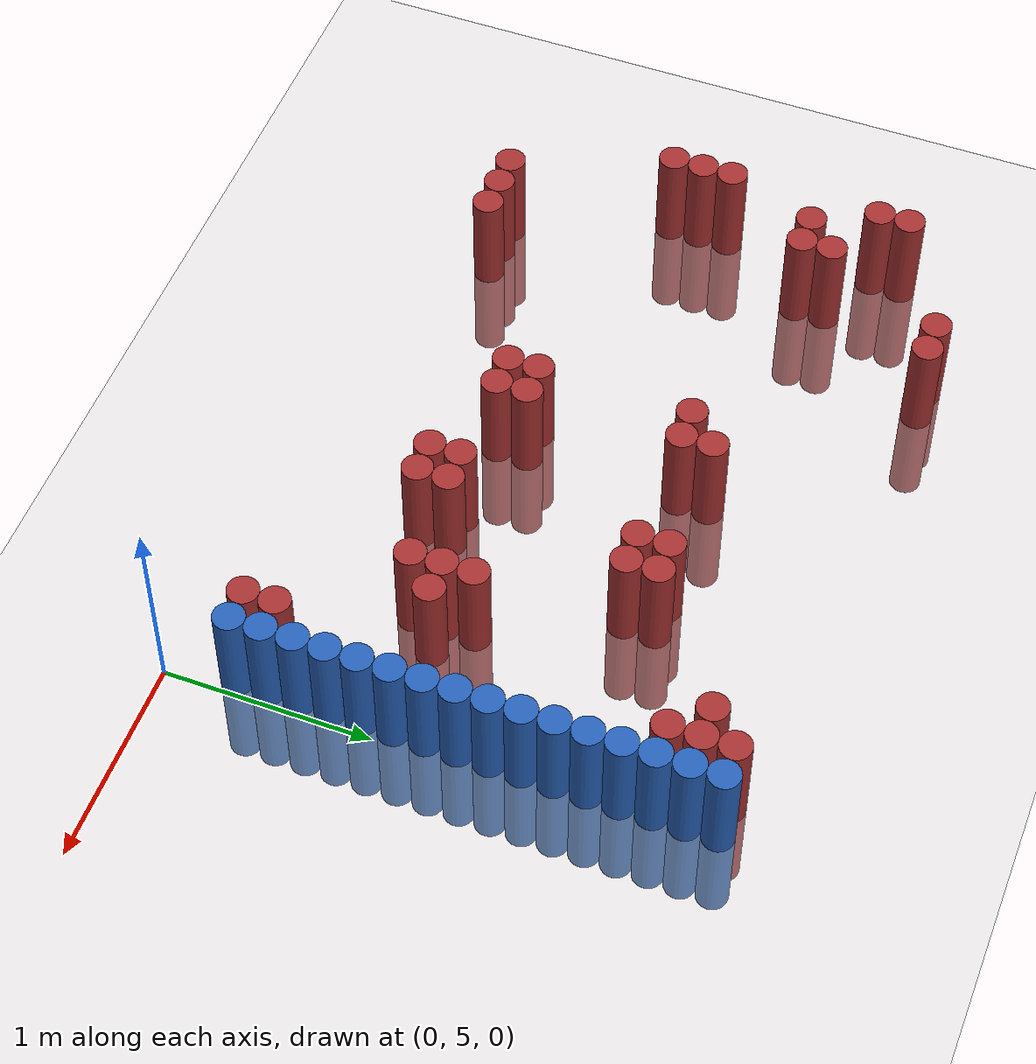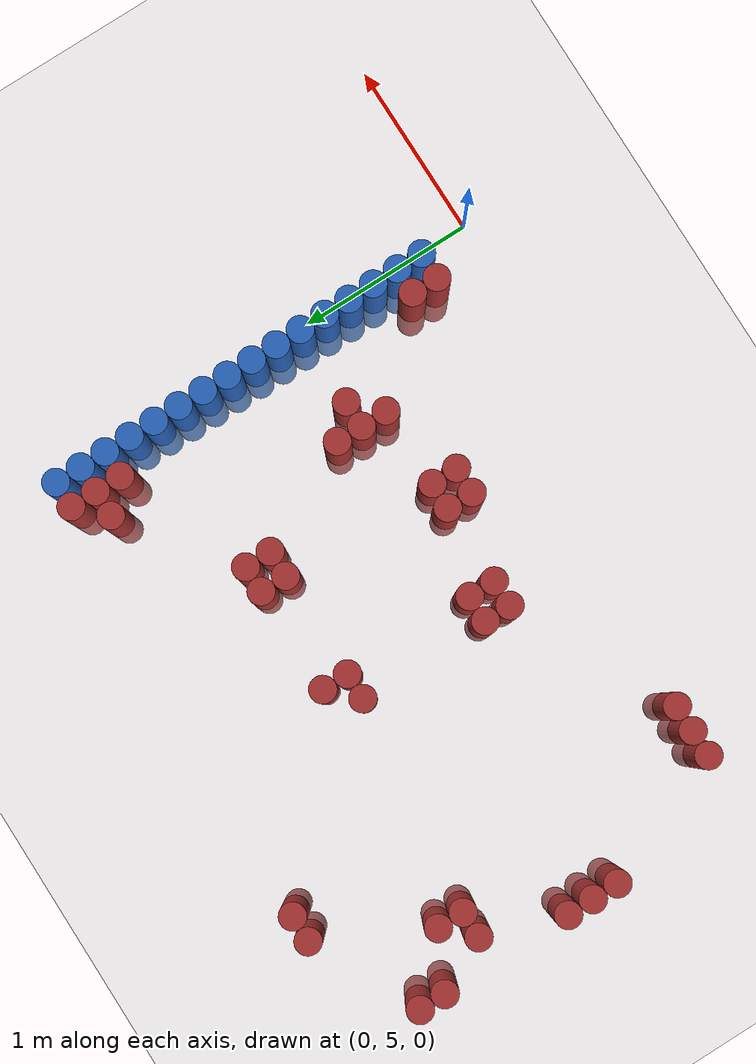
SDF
<sdf version="1.6">
 <world name="default">
  <model name="ground_plane">
   <static>1</static>
   <link name="link">
    <collision name="collision">
     <geometry><plane><normal>0 0 1</normal><size>100 100</size></plane></geometry>
     <surface><friction><ode><mu>100</mu><mu2>50</mu2></ode></friction></surface>
    </collision>
    <visual name="visual">
     <cast_shadows>0</cast_shadows>
     <geometry><plane><normal>0 0 1</normal><size>100 100</size></plane></geometry>
     <material>
      <script><uri>file://media/materials/scripts/gazebo.material</uri><name>Gazebo/Grey</name></script>
     </material>
    </visual>
   </link>
  </model>
  <model name="unit_cylinder_152">
   <static>1</static>
   <pose>-3.375000 6.225000 0.000000 0.000000 0.000000 0.000000</pose>
   <link name="link">
    <inertial>
     <mass>1</mass>
     <inertia><ixx>0.145833</ixx><ixy>0</ixy><ixz>0</ixz><iyy>0.145833</iyy><iyz>0</iyz><izz>0.125</izz></inertia>
    </inertial>
    <collision name="collision">
     <geometry><cylinder><radius>0.075000</radius><length>1</length></cylinder></geometry>
    </collision>
    <visual name="visual">
     <geometry><cylinder><radius>0.075000</radius><length>1</length></cylinder></geometry>
     <material>
      <ambient>0.648000 0.192000 0.192000 1</ambient>
      <diffuse>0.648000 0.192000 0.192000 1</diffuse>
     </material>
     <material>
      <script><name>Gazebo/Grey</name><uri>file://media/materials/scripts/gazebo.material</uri></script>
     </material>
    </visual>
   </link>
  </model>
  <model name="unit_cylinder_153">
   <static>1</static>
   <pose>-3.375000 6.375000 0.000000 0.000000 0.000000 0.000000</pose>
   <link name="link">
    <inertial>
     <mass>1</mass>
     <inertia><ixx>0.145833</ixx><ixy>0</ixy><ixz>0</ixz><iyy>0.145833</iyy><iyz>0</iyz><izz>0.125</izz></inertia>
    </inertial>
    <collision name="collision">
     <geometry><cylinder><radius>0.075000</radius><length>1</length></cylinder></geometry>
    </collision>
    <visual name="visual">
     <geometry><cylinder><radius>0.075000</radius><length>1</length></cylinder></geometry>
     <material>
      <ambient>0.648000 0.192000 0.192000 1</ambient>
      <diffuse>0.648000 0.192000 0.192000 1</diffuse>
     </material>
     <material>
      <script><name>Gazebo/Grey</name><uri>file://media/materials/scripts/gazebo.material</uri></script>
     </material>
    </visual>
   </link>
  </model>
  <model name="unit_cylinder_154">
   <static>1</static>
   <pose>-3.375000 6.525000 0.000000 0.000000 0.000000 0.000000</pose>
   <link name="link">
    <inertial>
     <mass>1</mass>
     <inertia><ixx>0.145833</ixx><ixy>0</ixy><ixz>0</ixz><iyy>0.145833</iyy><iyz>0</iyz><izz>0.125</izz></inertia>
    </inertial>
    <collision name="collision">
     <geometry><cylinder><radius>0.075000</radius><length>1</length></cylinder></geometry>
    </collision>
    <visual name="visual">
     <geometry><cylinder><radius>0.075000</radius><length>1</length></cylinder></geometry>
     <material>
      <ambient>0.648000 0.192000 0.192000 1</ambient>
      <diffuse>0.648000 0.192000 0.192000 1</diffuse>
     </material>
     <material>
      <script><name>Gazebo/Grey</name><uri>file://media/materials/scripts/gazebo.material</uri></script>
     </material>
    </visual>
   </link>
  </model>
  <model name="unit_cylinder_155">
   <static>1</static>
   <pose>-3.375000 7.275000 0.000000 0.000000 0.000000 0.000000</pose>
   <link name="link">
    <inertial>
     <mass>1</mass>
     <inertia><ixx>0.145833</ixx><ixy>0</ixy><ixz>0</ixz><iyy>0.145833</iyy><iyz>0</iyz><izz>0.125</izz></inertia>
    </inertial>
    <collision name="collision">
     <geometry><cylinder><radius>0.075000</radius><length>1</length></cylinder></geometry>
    </collision>
    <visual name="visual">
     <geometry><cylinder><radius>0.075000</radius><length>1</length></cylinder></geometry>
     <material>
      <ambient>0.648000 0.192000 0.192000 1</ambient>
      <diffuse>0.648000 0.192000 0.192000 1</diffuse>
     </material>
     <material>
      <script><name>Gazebo/Grey</name><uri>file://media/materials/scripts/gazebo.material</uri></script>
     </material>
    </visual>
   </link>
  </model>
  <model name="unit_cylinder_156">
   <static>1</static>
   <pose>-3.375000 7.425000 0.000000 0.000000 0.000000 0.000000</pose>
   <link name="link">
    <inertial>
     <mass>1</mass>
     <inertia><ixx>0.145833</ixx><ixy>0</ixy><ixz>0</ixz><iyy>0.145833</iyy><iyz>0</iyz><izz>0.125</izz></inertia>
    </inertial>
    <collision name="collision">
     <geometry><cylinder><radius>0.075000</radius><length>1</length></cylinder></geometry>
    </collision>
    <visual name="visual">
     <geometry><cylinder><radius>0.075000</radius><length>1</length></cylinder></geometry>
     <material>
      <ambient>0.648000 0.192000 0.192000 1</ambient>
      <diffuse>0.648000 0.192000 0.192000 1</diffuse>
     </material>
     <material>
      <script><name>Gazebo/Grey</name><uri>file://media/materials/scripts/gazebo.material</uri></script>
     </material>
    </visual>
   </link>
  </model>
  <model name="unit_cylinder_157">
   <static>1</static>
   <pose>-3.225000 6.975000 0.000000 0.000000 0.000000 0.000000</pose>
   <link name="link">
    <inertial>
     <mass>1</mass>
     <inertia><ixx>0.145833</ixx><ixy>0</ixy><ixz>0</ixz><iyy>0.145833</iyy><iyz>0</iyz><izz>0.125</izz></inertia>
    </inertial>
    <collision name="collision">
     <geometry><cylinder><radius>0.075000</radius><length>1</length></cylinder></geometry>
    </collision>
    <visual name="visual">
     <geometry><cylinder><radius>0.075000</radius><length>1</length></cylinder></geometry>
     <material>
      <ambient>0.648000 0.192000 0.192000 1</ambient>
      <diffuse>0.648000 0.192000 0.192000 1</diffuse>
     </material>
     <material>
      <script><name>Gazebo/Grey</name><uri>file://media/materials/scripts/gazebo.material</uri></script>
     </material>
    </visual>
   </link>
  </model>
  <model name="unit_cylinder_159">
   <static>1</static>
   <pose>-3.075000 5.475000 0.000000 0.000000 0.000000 0.000000</pose>
   <link name="link">
    <inertial>
     <mass>1</mass>
     <inertia><ixx>0.145833</ixx><ixy>0</ixy><ixz>0</ixz><iyy>0.145833</iyy><iyz>0</iyz><izz>0.125</izz></inertia>
    </inertial>
    <collision name="collision">
     <geometry><cylinder><radius>0.075000</radius><length>1</length></cylinder></geometry>
    </collision>
    <visual name="visual">
     <geometry><cylinder><radius>0.075000</radius><length>1</length></cylinder></geometry>
     <material>
      <ambient>0.648000 0.192000 0.192000 1</ambient>
      <diffuse>0.648000 0.192000 0.192000 1</diffuse>
     </material>
     <material>
      <script><name>Gazebo/Grey</name><uri>file://media/materials/scripts/gazebo.material</uri></script>
     </material>
    </visual>
   </link>
  </model>
  <model name="unit_cylinder_160">
   <static>1</static>
   <pose>-3.075000 6.975000 0.000000 0.000000 0.000000 0.000000</pose>
   <link name="link">
    <inertial>
     <mass>1</mass>
     <inertia><ixx>0.145833</ixx><ixy>0</ixy><ixz>0</ixz><iyy>0.145833</iyy><iyz>0</iyz><izz>0.125</izz></inertia>
    </inertial>
    <collision name="collision">
     <geometry><cylinder><radius>0.075000</radius><length>1</length></cylinder></geometry>
    </collision>
    <visual name="visual">
     <geometry><cylinder><radius>0.075000</radius><length>1</length></cylinder></geometry>
     <material>
      <ambient>0.648000 0.192000 0.192000 1</ambient>
      <diffuse>0.648000 0.192000 0.192000 1</diffuse>
     </material>
     <material>
      <script><name>Gazebo/Grey</name><uri>file://media/materials/scripts/gazebo.material</uri></script>
     </material>
    </visual>
   </link>
  </model>
  <model name="unit_cylinder_161">
   <static>1</static>
   <pose>-3.075000 7.125000 0.000000 0.000000 0.000000 0.000000</pose>
   <link name="link">
    <inertial>
     <mass>1</mass>
     <inertia><ixx>0.145833</ixx><ixy>0</ixy><ixz>0</ixz><iyy>0.145833</iyy><iyz>0</iyz><izz>0.125</izz></inertia>
    </inertial>
    <collision name="collision">
     <geometry><cylinder><radius>0.075000</radius><length>1</length></cylinder></geometry>
    </collision>
    <visual name="visual">
     <geometry><cylinder><radius>0.075000</radius><length>1</length></cylinder></geometry>
     <material>
      <ambient>0.648000 0.192000 0.192000 1</ambient>
      <diffuse>0.648000 0.192000 0.192000 1</diffuse>
     </material>
     <material>
      <script><name>Gazebo/Grey</name><uri>file://media/materials/scripts/gazebo.material</uri></script>
     </material>
    </visual>
   </link>
  </model>
  <model name="unit_cylinder_164">
   <static>1</static>
   <pose>-2.925000 5.475000 0.000000 0.000000 0.000000 0.000000</pose>
   <link name="link">
    <inertial>
     <mass>1</mass>
     <inertia><ixx>0.145833</ixx><ixy>0</ixy><ixz>0</ixz><iyy>0.145833</iyy><iyz>0</iyz><izz>0.125</izz></inertia>
    </inertial>
    <collision name="collision">
     <geometry><cylinder><radius>0.075000</radius><length>1</length></cylinder></geometry>
    </collision>
    <visual name="visual">
     <geometry><cylinder><radius>0.075000</radius><length>1</length></cylinder></geometry>
     <material>
      <ambient>0.648000 0.192000 0.192000 1</ambient>
      <diffuse>0.648000 0.192000 0.192000 1</diffuse>
     </material>
     <material>
      <script><name>Gazebo/Grey</name><uri>file://media/materials/scripts/gazebo.material</uri></script>
     </material>
    </visual>
   </link>
  </model>
  <model name="unit_cylinder_169">
   <static>1</static>
   <pose>-2.775000 5.475000 0.000000 0.000000 0.000000 0.000000</pose>
   <link name="link">
    <inertial>
     <mass>1</mass>
     <inertia><ixx>0.145833</ixx><ixy>0</ixy><ixz>0</ixz><iyy>0.145833</iyy><iyz>0</iyz><izz>0.125</izz></inertia>
    </inertial>
    <collision name="collision">
     <geometry><cylinder><radius>0.075000</radius><length>1</length></cylinder></geometry>
    </collision>
    <visual name="visual">
     <geometry><cylinder><radius>0.075000</radius><length>1</length></cylinder></geometry>
     <material>
      <ambient>0.648000 0.192000 0.192000 1</ambient>
      <diffuse>0.648000 0.192000 0.192000 1</diffuse>
     </material>
     <material>
      <script><name>Gazebo/Grey</name><uri>file://media/materials/scripts/gazebo.material</uri></script>
     </material>
    </visual>
   </link>
  </model>
  <model name="unit_cylinder_170">
   <static>1</static>
   <pose>-2.775000 7.725000 0.000000 0.000000 0.000000 0.000000</pose>
   <link name="link">
    <inertial>
     <mass>1</mass>
     <inertia><ixx>0.145833</ixx><ixy>0</ixy><ixz>0</ixz><iyy>0.145833</iyy><iyz>0</iyz><izz>0.125</izz></inertia>
    </inertial>
    <collision name="collision">
     <geometry><cylinder><radius>0.075000</radius><length>1</length></cylinder></geometry>
    </collision>
    <visual name="visual">
     <geometry><cylinder><radius>0.075000</radius><length>1</length></cylinder></geometry>
     <material>
      <ambient>0.648000 0.192000 0.192000 1</ambient>
      <diffuse>0.648000 0.192000 0.192000 1</diffuse>
     </material>
     <material>
      <script><name>Gazebo/Grey</name><uri>file://media/materials/scripts/gazebo.material</uri></script>
     </material>
    </visual>
   </link>
  </model>
  <model name="unit_cylinder_176">
   <static>1</static>
   <pose>-2.625000 7.725000 0.000000 0.000000 0.000000 0.000000</pose>
   <link name="link">
    <inertial>
     <mass>1</mass>
     <inertia><ixx>0.145833</ixx><ixy>0</ixy><ixz>0</ixz><iyy>0.145833</iyy><iyz>0</iyz><izz>0.125</izz></inertia>
    </inertial>
    <collision name="collision">
     <geometry><cylinder><radius>0.075000</radius><length>1</length></cylinder></geometry>
    </collision>
    <visual name="visual">
     <geometry><cylinder><radius>0.075000</radius><length>1</length></cylinder></geometry>
     <material>
      <ambient>0.648000 0.192000 0.192000 1</ambient>
      <diffuse>0.648000 0.192000 0.192000 1</diffuse>
     </material>
     <material>
      <script><name>Gazebo/Grey</name><uri>file://media/materials/scripts/gazebo.material</uri></script>
     </material>
    </visual>
   </link>
  </model>
  <model name="unit_cylinder_196">
   <static>1</static>
   <pose>-1.875000 5.925000 0.000000 0.000000 0.000000 0.000000</pose>
   <link name="link">
    <inertial>
     <mass>1</mass>
     <inertia><ixx>0.145833</ixx><ixy>0</ixy><ixz>0</ixz><iyy>0.145833</iyy><iyz>0</iyz><izz>0.125</izz></inertia>
    </inertial>
    <collision name="collision">
     <geometry><cylinder><radius>0.075000</radius><length>1</length></cylinder></geometry>
    </collision>
    <visual name="visual">
     <geometry><cylinder><radius>0.075000</radius><length>1</length></cylinder></geometry>
     <material>
      <ambient>0.648000 0.192000 0.192000 1</ambient>
      <diffuse>0.648000 0.192000 0.192000 1</diffuse>
     </material>
     <material>
      <script><name>Gazebo/Grey</name><uri>file://media/materials/scripts/gazebo.material</uri></script>
     </material>
    </visual>
   </link>
  </model>
  <model name="unit_cylinder_197">
   <static>1</static>
   <pose>-1.875000 6.075000 0.000000 0.000000 0.000000 0.000000</pose>
   <link name="link">
    <inertial>
     <mass>1</mass>
     <inertia><ixx>0.145833</ixx><ixy>0</ixy><ixz>0</ixz><iyy>0.145833</iyy><iyz>0</iyz><izz>0.125</izz></inertia>
    </inertial>
    <collision name="collision">
     <geometry><cylinder><radius>0.075000</radius><length>1</length></cylinder></geometry>
    </collision>
    <visual name="visual">
     <geometry><cylinder><radius>0.075000</radius><length>1</length></cylinder></geometry>
     <material>
      <ambient>0.648000 0.192000 0.192000 1</ambient>
      <diffuse>0.648000 0.192000 0.192000 1</diffuse>
     </material>
     <material>
      <script><name>Gazebo/Grey</name><uri>file://media/materials/scripts/gazebo.material</uri></script>
     </material>
    </visual>
   </link>
  </model>
  <model name="unit_cylinder_198">
   <static>1</static>
   <pose>-1.875000 6.825000 0.000000 0.000000 0.000000 0.000000</pose>
   <link name="link">
    <inertial>
     <mass>1</mass>
     <inertia><ixx>0.145833</ixx><ixy>0</ixy><ixz>0</ixz><iyy>0.145833</iyy><iyz>0</iyz><izz>0.125</izz></inertia>
    </inertial>
    <collision name="collision">
     <geometry><cylinder><radius>0.075000</radius><length>1</length></cylinder></geometry>
    </collision>
    <visual name="visual">
     <geometry><cylinder><radius>0.075000</radius><length>1</length></cylinder></geometry>
     <material>
      <ambient>0.648000 0.192000 0.192000 1</ambient>
      <diffuse>0.648000 0.192000 0.192000 1</diffuse>
     </material>
     <material>
      <script><name>Gazebo/Grey</name><uri>file://media/materials/scripts/gazebo.material</uri></script>
     </material>
    </visual>
   </link>
  </model>
  <model name="unit_cylinder_201">
   <static>1</static>
   <pose>-1.725000 5.925000 0.000000 0.000000 0.000000 0.000000</pose>
   <link name="link">
    <inertial>
     <mass>1</mass>
     <inertia><ixx>0.145833</ixx><ixy>0</ixy><ixz>0</ixz><iyy>0.145833</iyy><iyz>0</iyz><izz>0.125</izz></inertia>
    </inertial>
    <collision name="collision">
     <geometry><cylinder><radius>0.075000</radius><length>1</length></cylinder></geometry>
    </collision>
    <visual name="visual">
     <geometry><cylinder><radius>0.075000</radius><length>1</length></cylinder></geometry>
     <material>
      <ambient>0.648000 0.192000 0.192000 1</ambient>
      <diffuse>0.648000 0.192000 0.192000 1</diffuse>
     </material>
     <material>
      <script><name>Gazebo/Grey</name><uri>file://media/materials/scripts/gazebo.material</uri></script>
     </material>
    </visual>
   </link>
  </model>
  <model name="unit_cylinder_202">
   <static>1</static>
   <pose>-1.725000 6.075000 0.000000 0.000000 0.000000 0.000000</pose>
   <link name="link">
    <inertial>
     <mass>1</mass>
     <inertia><ixx>0.145833</ixx><ixy>0</ixy><ixz>0</ixz><iyy>0.145833</iyy><iyz>0</iyz><izz>0.125</izz></inertia>
    </inertial>
    <collision name="collision">
     <geometry><cylinder><radius>0.075000</radius><length>1</length></cylinder></geometry>
    </collision>
    <visual name="visual">
     <geometry><cylinder><radius>0.075000</radius><length>1</length></cylinder></geometry>
     <material>
      <ambient>0.648000 0.192000 0.192000 1</ambient>
      <diffuse>0.648000 0.192000 0.192000 1</diffuse>
     </material>
     <material>
      <script><name>Gazebo/Grey</name><uri>file://media/materials/scripts/gazebo.material</uri></script>
     </material>
    </visual>
   </link>
  </model>
  <model name="unit_cylinder_203">
   <static>1</static>
   <pose>-1.725000 6.825000 0.000000 0.000000 0.000000 0.000000</pose>
   <link name="link">
    <inertial>
     <mass>1</mass>
     <inertia><ixx>0.145833</ixx><ixy>0</ixy><ixz>0</ixz><iyy>0.145833</iyy><iyz>0</iyz><izz>0.125</izz></inertia>
    </inertial>
    <collision name="collision">
     <geometry><cylinder><radius>0.075000</radius><length>1</length></cylinder></geometry>
    </collision>
    <visual name="visual">
     <geometry><cylinder><radius>0.075000</radius><length>1</length></cylinder></geometry>
     <material>
      <ambient>0.648000 0.192000 0.192000 1</ambient>
      <diffuse>0.648000 0.192000 0.192000 1</diffuse>
     </material>
     <material>
      <script><name>Gazebo/Grey</name><uri>file://media/materials/scripts/gazebo.material</uri></script>
     </material>
    </visual>
   </link>
  </model>
  <model name="unit_cylinder_204">
   <static>1</static>
   <pose>-1.725000 6.975000 0.000000 0.000000 0.000000 0.000000</pose>
   <link name="link">
    <inertial>
     <mass>1</mass>
     <inertia><ixx>0.145833</ixx><ixy>0</ixy><ixz>0</ixz><iyy>0.145833</iyy><iyz>0</iyz><izz>0.125</izz></inertia>
    </inertial>
    <collision name="collision">
     <geometry><cylinder><radius>0.075000</radius><length>1</length></cylinder></geometry>
    </collision>
    <visual name="visual">
     <geometry><cylinder><radius>0.075000</radius><length>1</length></cylinder></geometry>
     <material>
      <ambient>0.648000 0.192000 0.192000 1</ambient>
      <diffuse>0.648000 0.192000 0.192000 1</diffuse>
     </material>
     <material>
      <script><name>Gazebo/Grey</name><uri>file://media/materials/scripts/gazebo.material</uri></script>
     </material>
    </visual>
   </link>
  </model>
  <model name="unit_cylinder_209">
   <static>1</static>
   <pose>-1.275000 5.775000 0.000000 0.000000 0.000000 0.000000</pose>
   <link name="link">
    <inertial>
     <mass>1</mass>
     <inertia><ixx>0.145833</ixx><ixy>0</ixy><ixz>0</ixz><iyy>0.145833</iyy><iyz>0</iyz><izz>0.125</izz></inertia>
    </inertial>
    <collision name="collision">
     <geometry><cylinder><radius>0.075000</radius><length>1</length></cylinder></geometry>
    </collision>
    <visual name="visual">
     <geometry><cylinder><radius>0.075000</radius><length>1</length></cylinder></geometry>
     <material>
      <ambient>0.648000 0.192000 0.192000 1</ambient>
      <diffuse>0.648000 0.192000 0.192000 1</diffuse>
     </material>
     <material>
      <script><name>Gazebo/Grey</name><uri>file://media/materials/scripts/gazebo.material</uri></script>
     </material>
    </visual>
   </link>
  </model>
  <model name="unit_cylinder_210">
   <static>1</static>
   <pose>-1.275000 5.925000 0.000000 0.000000 0.000000 0.000000</pose>
   <link name="link">
    <inertial>
     <mass>1</mass>
     <inertia><ixx>0.145833</ixx><ixy>0</ixy><ixz>0</ixz><iyy>0.145833</iyy><iyz>0</iyz><izz>0.125</izz></inertia>
    </inertial>
    <collision name="collision">
     <geometry><cylinder><radius>0.075000</radius><length>1</length></cylinder></geometry>
    </collision>
    <visual name="visual">
     <geometry><cylinder><radius>0.075000</radius><length>1</length></cylinder></geometry>
     <material>
      <ambient>0.648000 0.192000 0.192000 1</ambient>
      <diffuse>0.648000 0.192000 0.192000 1</diffuse>
     </material>
     <material>
      <script><name>Gazebo/Grey</name><uri>file://media/materials/scripts/gazebo.material</uri></script>
     </material>
    </visual>
   </link>
  </model>
  <model name="unit_cylinder_212">
   <static>1</static>
   <pose>-1.125000 5.775000 0.000000 0.000000 0.000000 0.000000</pose>
   <link name="link">
    <inertial>
     <mass>1</mass>
     <inertia><ixx>0.145833</ixx><ixy>0</ixy><ixz>0</ixz><iyy>0.145833</iyy><iyz>0</iyz><izz>0.125</izz></inertia>
    </inertial>
    <collision name="collision">
     <geometry><cylinder><radius>0.075000</radius><length>1</length></cylinder></geometry>
    </collision>
    <visual name="visual">
     <geometry><cylinder><radius>0.075000</radius><length>1</length></cylinder></geometry>
     <material>
      <ambient>0.648000 0.192000 0.192000 1</ambient>
      <diffuse>0.648000 0.192000 0.192000 1</diffuse>
     </material>
     <material>
      <script><name>Gazebo/Grey</name><uri>file://media/materials/scripts/gazebo.material</uri></script>
     </material>
    </visual>
   </link>
  </model>
  <model name="unit_cylinder_213">
   <static>1</static>
   <pose>-1.125000 5.925000 0.000000 0.000000 0.000000 0.000000</pose>
   <link name="link">
    <inertial>
     <mass>1</mass>
     <inertia><ixx>0.145833</ixx><ixy>0</ixy><ixz>0</ixz><iyy>0.145833</iyy><iyz>0</iyz><izz>0.125</izz></inertia>
    </inertial>
    <collision name="collision">
     <geometry><cylinder><radius>0.075000</radius><length>1</length></cylinder></geometry>
    </collision>
    <visual name="visual">
     <geometry><cylinder><radius>0.075000</radius><length>1</length></cylinder></geometry>
     <material>
      <ambient>0.648000 0.192000 0.192000 1</ambient>
      <diffuse>0.648000 0.192000 0.192000 1</diffuse>
     </material>
     <material>
      <script><name>Gazebo/Grey</name><uri>file://media/materials/scripts/gazebo.material</uri></script>
     </material>
    </visual>
   </link>
  </model>
  <model name="unit_cylinder_214">
   <static>1</static>
   <pose>-1.125000 6.825000 0.000000 0.000000 0.000000 0.000000</pose>
   <link name="link">
    <inertial>
     <mass>1</mass>
     <inertia><ixx>0.145833</ixx><ixy>0</ixy><ixz>0</ixz><iyy>0.145833</iyy><iyz>0</iyz><izz>0.125</izz></inertia>
    </inertial>
    <collision name="collision">
     <geometry><cylinder><radius>0.075000</radius><length>1</length></cylinder></geometry>
    </collision>
    <visual name="visual">
     <geometry><cylinder><radius>0.075000</radius><length>1</length></cylinder></geometry>
     <material>
      <ambient>0.648000 0.192000 0.192000 1</ambient>
      <diffuse>0.648000 0.192000 0.192000 1</diffuse>
     </material>
     <material>
      <script><name>Gazebo/Grey</name><uri>file://media/materials/scripts/gazebo.material</uri></script>
     </material>
    </visual>
   </link>
  </model>
  <model name="unit_cylinder_215">
   <static>1</static>
   <pose>-1.125000 6.975000 0.000000 0.000000 0.000000 0.000000</pose>
   <link name="link">
    <inertial>
     <mass>1</mass>
     <inertia><ixx>0.145833</ixx><ixy>0</ixy><ixz>0</ixz><iyy>0.145833</iyy><iyz>0</iyz><izz>0.125</izz></inertia>
    </inertial>
    <collision name="collision">
     <geometry><cylinder><radius>0.075000</radius><length>1</length></cylinder></geometry>
    </collision>
    <visual name="visual">
     <geometry><cylinder><radius>0.075000</radius><length>1</length></cylinder></geometry>
     <material>
      <ambient>0.648000 0.192000 0.192000 1</ambient>
      <diffuse>0.648000 0.192000 0.192000 1</diffuse>
     </material>
     <material>
      <script><name>Gazebo/Grey</name><uri>file://media/materials/scripts/gazebo.material</uri></script>
     </material>
    </visual>
   </link>
  </model>
  <model name="unit_cylinder_216">
   <static>1</static>
   <pose>-0.975000 6.825000 0.000000 0.000000 0.000000 0.000000</pose>
   <link name="link">
    <inertial>
     <mass>1</mass>
     <inertia><ixx>0.145833</ixx><ixy>0</ixy><ixz>0</ixz><iyy>0.145833</iyy><iyz>0</iyz><izz>0.125</izz></inertia>
    </inertial>
    <collision name="collision">
     <geometry><cylinder><radius>0.075000</radius><length>1</length></cylinder></geometry>
    </collision>
    <visual name="visual">
     <geometry><cylinder><radius>0.075000</radius><length>1</length></cylinder></geometry>
     <material>
      <ambient>0.648000 0.192000 0.192000 1</ambient>
      <diffuse>0.648000 0.192000 0.192000 1</diffuse>
     </material>
     <material>
      <script><name>Gazebo/Grey</name><uri>file://media/materials/scripts/gazebo.material</uri></script>
     </material>
    </visual>
   </link>
  </model>
  <model name="unit_cylinder_217">
   <static>1</static>
   <pose>-0.975000 6.975000 0.000000 0.000000 0.000000 0.000000</pose>
   <link name="link">
    <inertial>
     <mass>1</mass>
     <inertia><ixx>0.145833</ixx><ixy>0</ixy><ixz>0</ixz><iyy>0.145833</iyy><iyz>0</iyz><izz>0.125</izz></inertia>
    </inertial>
    <collision name="collision">
     <geometry><cylinder><radius>0.075000</radius><length>1</length></cylinder></geometry>
    </collision>
    <visual name="visual">
     <geometry><cylinder><radius>0.075000</radius><length>1</length></cylinder></geometry>
     <material>
      <ambient>0.648000 0.192000 0.192000 1</ambient>
      <diffuse>0.648000 0.192000 0.192000 1</diffuse>
     </material>
     <material>
      <script><name>Gazebo/Grey</name><uri>file://media/materials/scripts/gazebo.material</uri></script>
     </material>
    </visual>
   </link>
  </model>
  <model name="unit_cylinder_218">
   <static>1</static>
   <pose>-0.675000 5.925000 0.000000 0.000000 0.000000 0.000000</pose>
   <link name="link">
    <inertial>
     <mass>1</mass>
     <inertia><ixx>0.145833</ixx><ixy>0</ixy><ixz>0</ixz><iyy>0.145833</iyy><iyz>0</iyz><izz>0.125</izz></inertia>
    </inertial>
    <collision name="collision">
     <geometry><cylinder><radius>0.075000</radius><length>1</length></cylinder></geometry>
    </collision>
    <visual name="visual">
     <geometry><cylinder><radius>0.075000</radius><length>1</length></cylinder></geometry>
     <material>
      <ambient>0.648000 0.192000 0.192000 1</ambient>
      <diffuse>0.648000 0.192000 0.192000 1</diffuse>
     </material>
     <material>
      <script><name>Gazebo/Grey</name><uri>file://media/materials/scripts/gazebo.material</uri></script>
     </material>
    </visual>
   </link>
  </model>
  <model name="unit_cylinder_219">
   <static>1</static>
   <pose>-0.675000 6.075000 0.000000 0.000000 0.000000 0.000000</pose>
   <link name="link">
    <inertial>
     <mass>1</mass>
     <inertia><ixx>0.145833</ixx><ixy>0</ixy><ixz>0</ixz><iyy>0.145833</iyy><iyz>0</iyz><izz>0.125</izz></inertia>
    </inertial>
    <collision name="collision">
     <geometry><cylinder><radius>0.075000</radius><length>1</length></cylinder></geometry>
    </collision>
    <visual name="visual">
     <geometry><cylinder><radius>0.075000</radius><length>1</length></cylinder></geometry>
     <material>
      <ambient>0.648000 0.192000 0.192000 1</ambient>
      <diffuse>0.648000 0.192000 0.192000 1</diffuse>
     </material>
     <material>
      <script><name>Gazebo/Grey</name><uri>file://media/materials/scripts/gazebo.material</uri></script>
     </material>
    </visual>
   </link>
  </model>
  <model name="unit_cylinder_220">
   <static>1</static>
   <pose>-0.675000 6.225000 0.000000 0.000000 0.000000 0.000000</pose>
   <link name="link">
    <inertial>
     <mass>1</mass>
     <inertia><ixx>0.145833</ixx><ixy>0</ixy><ixz>0</ixz><iyy>0.145833</iyy><iyz>0</iyz><izz>0.125</izz></inertia>
    </inertial>
    <collision name="collision">
     <geometry><cylinder><radius>0.075000</radius><length>1</length></cylinder></geometry>
    </collision>
    <visual name="visual">
     <geometry><cylinder><radius>0.075000</radius><length>1</length></cylinder></geometry>
     <material>
      <ambient>0.648000 0.192000 0.192000 1</ambient>
      <diffuse>0.648000 0.192000 0.192000 1</diffuse>
     </material>
     <material>
      <script><name>Gazebo/Grey</name><uri>file://media/materials/scripts/gazebo.material</uri></script>
     </material>
    </visual>
   </link>
  </model>
  <model name="unit_cylinder_221">
   <static>1</static>
   <pose>-0.525000 6.075000 0.000000 0.000000 0.000000 0.000000</pose>
   <link name="link">
    <inertial>
     <mass>1</mass>
     <inertia><ixx>0.145833</ixx><ixy>0</ixy><ixz>0</ixz><iyy>0.145833</iyy><iyz>0</iyz><izz>0.125</izz></inertia>
    </inertial>
    <collision name="collision">
     <geometry><cylinder><radius>0.075000</radius><length>1</length></cylinder></geometry>
    </collision>
    <visual name="visual">
     <geometry><cylinder><radius>0.075000</radius><length>1</length></cylinder></geometry>
     <material>
      <ambient>0.648000 0.192000 0.192000 1</ambient>
      <diffuse>0.648000 0.192000 0.192000 1</diffuse>
     </material>
     <material>
      <script><name>Gazebo/Grey</name><uri>file://media/materials/scripts/gazebo.material</uri></script>
     </material>
    </visual>
   </link>
  </model>
  <model name="unit_cylinder_223">
   <static>1</static>
   <pose>-0.375000 7.425000 0.000000 0.000000 0.000000 0.000000</pose>
   <link name="link">
    <inertial>
     <mass>1</mass>
     <inertia><ixx>0.145833</ixx><ixy>0</ixy><ixz>0</ixz><iyy>0.145833</iyy><iyz>0</iyz><izz>0.125</izz></inertia>
    </inertial>
    <collision name="collision">
     <geometry><cylinder><radius>0.075000</radius><length>1</length></cylinder></geometry>
    </collision>
    <visual name="visual">
     <geometry><cylinder><radius>0.075000</radius><length>1</length></cylinder></geometry>
     <material>
      <ambient>0.648000 0.192000 0.192000 1</ambient>
      <diffuse>0.648000 0.192000 0.192000 1</diffuse>
     </material>
     <material>
      <script><name>Gazebo/Grey</name><uri>file://media/materials/scripts/gazebo.material</uri></script>
     </material>
    </visual>
   </link>
  </model>
  <model name="unit_cylinder_227">
   <static>1</static>
   <pose>-0.225000 5.325000 0.000000 0.000000 0.000000 0.000000</pose>
   <link name="link">
    <inertial>
     <mass>1</mass>
     <inertia><ixx>0.145833</ixx><ixy>0</ixy><ixz>0</ixz><iyy>0.145833</iyy><iyz>0</iyz><izz>0.125</izz></inertia>
    </inertial>
    <collision name="collision">
     <geometry><cylinder><radius>0.075000</radius><length>1</length></cylinder></geometry>
    </collision>
    <visual name="visual">
     <geometry><cylinder><radius>0.075000</radius><length>1</length></cylinder></geometry>
     <material>
      <ambient>0.648000 0.192000 0.192000 1</ambient>
      <diffuse>0.648000 0.192000 0.192000 1</diffuse>
     </material>
     <material>
      <script><name>Gazebo/Grey</name><uri>file://media/materials/scripts/gazebo.material</uri></script>
     </material>
    </visual>
   </link>
  </model>
  <model name="unit_cylinder_228">
   <static>1</static>
   <pose>-0.225000 5.475000 0.000000 0.000000 0.000000 0.000000</pose>
   <link name="link">
    <inertial>
     <mass>1</mass>
     <inertia><ixx>0.145833</ixx><ixy>0</ixy><ixz>0</ixz><iyy>0.145833</iyy><iyz>0</iyz><izz>0.125</izz></inertia>
    </inertial>
    <collision name="collision">
     <geometry><cylinder><radius>0.075000</radius><length>1</length></cylinder></geometry>
    </collision>
    <visual name="visual">
     <geometry><cylinder><radius>0.075000</radius><length>1</length></cylinder></geometry>
     <material>
      <ambient>0.648000 0.192000 0.192000 1</ambient>
      <diffuse>0.648000 0.192000 0.192000 1</diffuse>
     </material>
     <material>
      <script><name>Gazebo/Grey</name><uri>file://media/materials/scripts/gazebo.material</uri></script>
     </material>
    </visual>
   </link>
  </model>
  <model name="unit_cylinder_229">
   <static>1</static>
   <pose>-0.225000 7.275000 0.000000 0.000000 0.000000 0.000000</pose>
   <link name="link">
    <inertial>
     <mass>1</mass>
     <inertia><ixx>0.145833</ixx><ixy>0</ixy><ixz>0</ixz><iyy>0.145833</iyy><iyz>0</iyz><izz>0.125</izz></inertia>
    </inertial>
    <collision name="collision">
     <geometry><cylinder><radius>0.075000</radius><length>1</length></cylinder></geometry>
    </collision>
    <visual name="visual">
     <geometry><cylinder><radius>0.075000</radius><length>1</length></cylinder></geometry>
     <material>
      <ambient>0.648000 0.192000 0.192000 1</ambient>
      <diffuse>0.648000 0.192000 0.192000 1</diffuse>
     </material>
     <material>
      <script><name>Gazebo/Grey</name><uri>file://media/materials/scripts/gazebo.material</uri></script>
     </material>
    </visual>
   </link>
  </model>
  <model name="unit_cylinder_230">
   <static>1</static>
   <pose>-0.225000 7.425000 0.000000 0.000000 0.000000 0.000000</pose>
   <link name="link">
    <inertial>
     <mass>1</mass>
     <inertia><ixx>0.145833</ixx><ixy>0</ixy><ixz>0</ixz><iyy>0.145833</iyy><iyz>0</iyz><izz>0.125</izz></inertia>
    </inertial>
    <collision name="collision">
     <geometry><cylinder><radius>0.075000</radius><length>1</length></cylinder></geometry>
    </collision>
    <visual name="visual">
     <geometry><cylinder><radius>0.075000</radius><length>1</length></cylinder></geometry>
     <material>
      <ambient>0.648000 0.192000 0.192000 1</ambient>
      <diffuse>0.648000 0.192000 0.192000 1</diffuse>
     </material>
     <material>
      <script><name>Gazebo/Grey</name><uri>file://media/materials/scripts/gazebo.material</uri></script>
     </material>
    </visual>
   </link>
  </model>
  <model name="unit_cylinder_231">
   <static>1</static>
   <pose>-0.225000 7.575000 0.000000 0.000000 0.000000 0.000000</pose>
   <link name="link">
    <inertial>
     <mass>1</mass>
     <inertia><ixx>0.145833</ixx><ixy>0</ixy><ixz>0</ixz><iyy>0.145833</iyy><iyz>0</iyz><izz>0.125</izz></inertia>
    </inertial>
    <collision name="collision">
     <geometry><cylinder><radius>0.075000</radius><length>1</length></cylinder></geometry>
    </collision>
    <visual name="visual">
     <geometry><cylinder><radius>0.075000</radius><length>1</length></cylinder></geometry>
     <material>
      <ambient>0.648000 0.192000 0.192000 1</ambient>
      <diffuse>0.648000 0.192000 0.192000 1</diffuse>
     </material>
     <material>
      <script><name>Gazebo/Grey</name><uri>file://media/materials/scripts/gazebo.material</uri></script>
     </material>
    </visual>
   </link>
  </model>
  <model name="unit_cylinder_240">
   <static>1</static>
   <pose>-0.075000 5.325000 0.000000 0.000000 0.000000 0.000000</pose>
   <link name="link">
    <inertial>
     <mass>1</mass>
     <inertia><ixx>0.145833</ixx><ixy>0</ixy><ixz>0</ixz><iyy>0.145833</iyy><iyz>0</iyz><izz>0.125</izz></inertia>
    </inertial>
    <collision name="collision">
     <geometry><cylinder><radius>0.075000</radius><length>1</length></cylinder></geometry>
    </collision>
    <visual name="visual">
     <geometry><cylinder><radius>0.075000</radius><length>1</length></cylinder></geometry>
     <material>
      <ambient>0.152000 0.379000 0.720000 1</ambient>
      <diffuse>0.152000 0.379000 0.720000 1</diffuse>
     </material>
     <material>
      <script><name>Gazebo/Grey</name><uri>file://media/materials/scripts/gazebo.material</uri></script>
     </material>
    </visual>
   </link>
  </model>
  <model name="unit_cylinder_241">
   <static>1</static>
   <pose>-0.075000 5.475000 0.000000 0.000000 0.000000 0.000000</pose>
   <link name="link">
    <inertial>
     <mass>1</mass>
     <inertia><ixx>0.145833</ixx><ixy>0</ixy><ixz>0</ixz><iyy>0.145833</iyy><iyz>0</iyz><izz>0.125</izz></inertia>
    </inertial>
    <collision name="collision">
     <geometry><cylinder><radius>0.075000</radius><length>1</length></cylinder></geometry>
    </collision>
    <visual name="visual">
     <geometry><cylinder><radius>0.075000</radius><length>1</length></cylinder></geometry>
     <material>
      <ambient>0.152000 0.379000 0.720000 1</ambient>
      <diffuse>0.152000 0.379000 0.720000 1</diffuse>
     </material>
     <material>
      <script><name>Gazebo/Grey</name><uri>file://media/materials/scripts/gazebo.material</uri></script>
     </material>
    </visual>
   </link>
  </model>
  <model name="unit_cylinder_242">
   <static>1</static>
   <pose>-0.075000 5.625000 0.000000 0.000000 0.000000 0.000000</pose>
   <link name="link">
    <inertial>
     <mass>1</mass>
     <inertia><ixx>0.145833</ixx><ixy>0</ixy><ixz>0</ixz><iyy>0.145833</iyy><iyz>0</iyz><izz>0.125</izz></inertia>
    </inertial>
    <collision name="collision">
     <geometry><cylinder><radius>0.075000</radius><length>1</length></cylinder></geometry>
    </collision>
    <visual name="visual">
     <geometry><cylinder><radius>0.075000</radius><length>1</length></cylinder></geometry>
     <material>
      <ambient>0.152000 0.379000 0.720000 1</ambient>
      <diffuse>0.152000 0.379000 0.720000 1</diffuse>
     </material>
     <material>
      <script><name>Gazebo/Grey</name><uri>file://media/materials/scripts/gazebo.material</uri></script>
     </material>
    </visual>
   </link>
  </model>
  <model name="unit_cylinder_243">
   <static>1</static>
   <pose>-0.075000 5.775000 0.000000 0.000000 0.000000 0.000000</pose>
   <link name="link">
    <inertial>
     <mass>1</mass>
     <inertia><ixx>0.145833</ixx><ixy>0</ixy><ixz>0</ixz><iyy>0.145833</iyy><iyz>0</iyz><izz>0.125</izz></inertia>
    </inertial>
    <collision name="collision">
     <geometry><cylinder><radius>0.075000</radius><length>1</length></cylinder></geometry>
    </collision>
    <visual name="visual">
     <geometry><cylinder><radius>0.075000</radius><length>1</length></cylinder></geometry>
     <material>
      <ambient>0.152000 0.379000 0.720000 1</ambient>
      <diffuse>0.152000 0.379000 0.720000 1</diffuse>
     </material>
     <material>
      <script><name>Gazebo/Grey</name><uri>file://media/materials/scripts/gazebo.material</uri></script>
     </material>
    </visual>
   </link>
  </model>
  <model name="unit_cylinder_244">
   <static>1</static>
   <pose>-0.075000 5.925000 0.000000 0.000000 0.000000 0.000000</pose>
   <link name="link">
    <inertial>
     <mass>1</mass>
     <inertia><ixx>0.145833</ixx><ixy>0</ixy><ixz>0</ixz><iyy>0.145833</iyy><iyz>0</iyz><izz>0.125</izz></inertia>
    </inertial>
    <collision name="collision">
     <geometry><cylinder><radius>0.075000</radius><length>1</length></cylinder></geometry>
    </collision>
    <visual name="visual">
     <geometry><cylinder><radius>0.075000</radius><length>1</length></cylinder></geometry>
     <material>
      <ambient>0.152000 0.379000 0.720000 1</ambient>
      <diffuse>0.152000 0.379000 0.720000 1</diffuse>
     </material>
     <material>
      <script><name>Gazebo/Grey</name><uri>file://media/materials/scripts/gazebo.material</uri></script>
     </material>
    </visual>
   </link>
  </model>
  <model name="unit_cylinder_245">
   <static>1</static>
   <pose>-0.075000 6.075000 0.000000 0.000000 0.000000 0.000000</pose>
   <link name="link">
    <inertial>
     <mass>1</mass>
     <inertia><ixx>0.145833</ixx><ixy>0</ixy><ixz>0</ixz><iyy>0.145833</iyy><iyz>0</iyz><izz>0.125</izz></inertia>
    </inertial>
    <collision name="collision">
     <geometry><cylinder><radius>0.075000</radius><length>1</length></cylinder></geometry>
    </collision>
    <visual name="visual">
     <geometry><cylinder><radius>0.075000</radius><length>1</length></cylinder></geometry>
     <material>
      <ambient>0.152000 0.379000 0.720000 1</ambient>
      <diffuse>0.152000 0.379000 0.720000 1</diffuse>
     </material>
     <material>
      <script><name>Gazebo/Grey</name><uri>file://media/materials/scripts/gazebo.material</uri></script>
     </material>
    </visual>
   </link>
  </model>
  <model name="unit_cylinder_246">
   <static>1</static>
   <pose>-0.075000 6.225000 0.000000 0.000000 0.000000 0.000000</pose>
   <link name="link">
    <inertial>
     <mass>1</mass>
     <inertia><ixx>0.145833</ixx><ixy>0</ixy><ixz>0</ixz><iyy>0.145833</iyy><iyz>0</iyz><izz>0.125</izz></inertia>
    </inertial>
    <collision name="collision">
     <geometry><cylinder><radius>0.075000</radius><length>1</length></cylinder></geometry>
    </collision>
    <visual name="visual">
     <geometry><cylinder><radius>0.075000</radius><length>1</length></cylinder></geometry>
     <material>
      <ambient>0.152000 0.379000 0.720000 1</ambient>
      <diffuse>0.152000 0.379000 0.720000 1</diffuse>
     </material>
     <material>
      <script><name>Gazebo/Grey</name><uri>file://media/materials/scripts/gazebo.material</uri></script>
     </material>
    </visual>
   </link>
  </model>
  <model name="unit_cylinder_247">
   <static>1</static>
   <pose>-0.075000 6.375000 0.000000 0.000000 0.000000 0.000000</pose>
   <link name="link">
    <inertial>
     <mass>1</mass>
     <inertia><ixx>0.145833</ixx><ixy>0</ixy><ixz>0</ixz><iyy>0.145833</iyy><iyz>0</iyz><izz>0.125</izz></inertia>
    </inertial>
    <collision name="collision">
     <geometry><cylinder><radius>0.075000</radius><length>1</length></cylinder></geometry>
    </collision>
    <visual name="visual">
     <geometry><cylinder><radius>0.075000</radius><length>1</length></cylinder></geometry>
     <material>
      <ambient>0.152000 0.379000 0.720000 1</ambient>
      <diffuse>0.152000 0.379000 0.720000 1</diffuse>
     </material>
     <material>
      <script><name>Gazebo/Grey</name><uri>file://media/materials/scripts/gazebo.material</uri></script>
     </material>
    </visual>
   </link>
  </model>
  <model name="unit_cylinder_248">
   <static>1</static>
   <pose>-0.075000 6.525000 0.000000 0.000000 0.000000 0.000000</pose>
   <link name="link">
    <inertial>
     <mass>1</mass>
     <inertia><ixx>0.145833</ixx><ixy>0</ixy><ixz>0</ixz><iyy>0.145833</iyy><iyz>0</iyz><izz>0.125</izz></inertia>
    </inertial>
    <collision name="collision">
     <geometry><cylinder><radius>0.075000</radius><length>1</length></cylinder></geometry>
    </collision>
    <visual name="visual">
     <geometry><cylinder><radius>0.075000</radius><length>1</length></cylinder></geometry>
     <material>
      <ambient>0.152000 0.379000 0.720000 1</ambient>
      <diffuse>0.152000 0.379000 0.720000 1</diffuse>
     </material>
     <material>
      <script><name>Gazebo/Grey</name><uri>file://media/materials/scripts/gazebo.material</uri></script>
     </material>
    </visual>
   </link>
  </model>
  <model name="unit_cylinder_249">
   <static>1</static>
   <pose>-0.075000 6.675000 0.000000 0.000000 0.000000 0.000000</pose>
   <link name="link">
    <inertial>
     <mass>1</mass>
     <inertia><ixx>0.145833</ixx><ixy>0</ixy><ixz>0</ixz><iyy>0.145833</iyy><iyz>0</iyz><izz>0.125</izz></inertia>
    </inertial>
    <collision name="collision">
     <geometry><cylinder><radius>0.075000</radius><length>1</length></cylinder></geometry>
    </collision>
    <visual name="visual">
     <geometry><cylinder><radius>0.075000</radius><length>1</length></cylinder></geometry>
     <material>
      <ambient>0.152000 0.379000 0.720000 1</ambient>
      <diffuse>0.152000 0.379000 0.720000 1</diffuse>
     </material>
     <material>
      <script><name>Gazebo/Grey</name><uri>file://media/materials/scripts/gazebo.material</uri></script>
     </material>
    </visual>
   </link>
  </model>
  <model name="unit_cylinder_250">
   <static>1</static>
   <pose>-0.075000 6.825000 0.000000 0.000000 0.000000 0.000000</pose>
   <link name="link">
    <inertial>
     <mass>1</mass>
     <inertia><ixx>0.145833</ixx><ixy>0</ixy><ixz>0</ixz><iyy>0.145833</iyy><iyz>0</iyz><izz>0.125</izz></inertia>
    </inertial>
    <collision name="collision">
     <geometry><cylinder><radius>0.075000</radius><length>1</length></cylinder></geometry>
    </collision>
    <visual name="visual">
     <geometry><cylinder><radius>0.075000</radius><length>1</length></cylinder></geometry>
     <material>
      <ambient>0.152000 0.379000 0.720000 1</ambient>
      <diffuse>0.152000 0.379000 0.720000 1</diffuse>
     </material>
     <material>
      <script><name>Gazebo/Grey</name><uri>file://media/materials/scripts/gazebo.material</uri></script>
     </material>
    </visual>
   </link>
  </model>
  <model name="unit_cylinder_251">
   <static>1</static>
   <pose>-0.075000 6.975000 0.000000 0.000000 0.000000 0.000000</pose>
   <link name="link">
    <inertial>
     <mass>1</mass>
     <inertia><ixx>0.145833</ixx><ixy>0</ixy><ixz>0</ixz><iyy>0.145833</iyy><iyz>0</iyz><izz>0.125</izz></inertia>
    </inertial>
    <collision name="collision">
     <geometry><cylinder><radius>0.075000</radius><length>1</length></cylinder></geometry>
    </collision>
    <visual name="visual">
     <geometry><cylinder><radius>0.075000</radius><length>1</length></cylinder></geometry>
     <material>
      <ambient>0.152000 0.379000 0.720000 1</ambient>
      <diffuse>0.152000 0.379000 0.720000 1</diffuse>
     </material>
     <material>
      <script><name>Gazebo/Grey</name><uri>file://media/materials/scripts/gazebo.material</uri></script>
     </material>
    </visual>
   </link>
  </model>
  <model name="unit_cylinder_252">
   <static>1</static>
   <pose>-0.075000 7.125000 0.000000 0.000000 0.000000 0.000000</pose>
   <link name="link">
    <inertial>
     <mass>1</mass>
     <inertia><ixx>0.145833</ixx><ixy>0</ixy><ixz>0</ixz><iyy>0.145833</iyy><iyz>0</iyz><izz>0.125</izz></inertia>
    </inertial>
    <collision name="collision">
     <geometry><cylinder><radius>0.075000</radius><length>1</length></cylinder></geometry>
    </collision>
    <visual name="visual">
     <geometry><cylinder><radius>0.075000</radius><length>1</length></cylinder></geometry>
     <material>
      <ambient>0.152000 0.379000 0.720000 1</ambient>
      <diffuse>0.152000 0.379000 0.720000 1</diffuse>
     </material>
     <material>
      <script><name>Gazebo/Grey</name><uri>file://media/materials/scripts/gazebo.material</uri></script>
     </material>
    </visual>
   </link>
  </model>
  <model name="unit_cylinder_253">
   <static>1</static>
   <pose>-0.075000 7.275000 0.000000 0.000000 0.000000 0.000000</pose>
   <link name="link">
    <inertial>
     <mass>1</mass>
     <inertia><ixx>0.145833</ixx><ixy>0</ixy><ixz>0</ixz><iyy>0.145833</iyy><iyz>0</iyz><izz>0.125</izz></inertia>
    </inertial>
    <collision name="collision">
     <geometry><cylinder><radius>0.075000</radius><length>1</length></cylinder></geometry>
    </collision>
    <visual name="visual">
     <geometry><cylinder><radius>0.075000</radius><length>1</length></cylinder></geometry>
     <material>
      <ambient>0.152000 0.379000 0.720000 1</ambient>
      <diffuse>0.152000 0.379000 0.720000 1</diffuse>
     </material>
     <material>
      <script><name>Gazebo/Grey</name><uri>file://media/materials/scripts/gazebo.material</uri></script>
     </material>
    </visual>
   </link>
  </model>
  <model name="unit_cylinder_254">
   <static>1</static>
   <pose>-0.075000 7.425000 0.000000 0.000000 0.000000 0.000000</pose>
   <link name="link">
    <inertial>
     <mass>1</mass>
     <inertia><ixx>0.145833</ixx><ixy>0</ixy><ixz>0</ixz><iyy>0.145833</iyy><iyz>0</iyz><izz>0.125</izz></inertia>
    </inertial>
    <collision name="collision">
     <geometry><cylinder><radius>0.075000</radius><length>1</length></cylinder></geometry>
    </collision>
    <visual name="visual">
     <geometry><cylinder><radius>0.075000</radius><length>1</length></cylinder></geometry>
     <material>
      <ambient>0.152000 0.379000 0.720000 1</ambient>
      <diffuse>0.152000 0.379000 0.720000 1</diffuse>
     </material>
     <material>
      <script><name>Gazebo/Grey</name><uri>file://media/materials/scripts/gazebo.material</uri></script>
     </material>
    </visual>
   </link>
  </model>
  <model name="unit_cylinder_255">
   <static>1</static>
   <pose>-0.075000 7.575000 0.000000 0.000000 0.000000 0.000000</pose>
   <link name="link">
    <inertial>
     <mass>1</mass>
     <inertia><ixx>0.145833</ixx><ixy>0</ixy><ixz>0</ixz><iyy>0.145833</iyy><iyz>0</iyz><izz>0.125</izz></inertia>
    </inertial>
    <collision name="collision">
     <geometry><cylinder><radius>0.075000</radius><length>1</length></cylinder></geometry>
    </collision>
    <visual name="visual">
     <geometry><cylinder><radius>0.075000</radius><length>1</length></cylinder></geometry>
     <material>
      <ambient>0.152000 0.379000 0.720000 1</ambient>
      <diffuse>0.152000 0.379000 0.720000 1</diffuse>
     </material>
     <material>
      <script><name>Gazebo/Grey</name><uri>file://media/materials/scripts/gazebo.material</uri></script>
     </material>
    </visual>
   </link>
  </model>
 </world>
</sdf>
